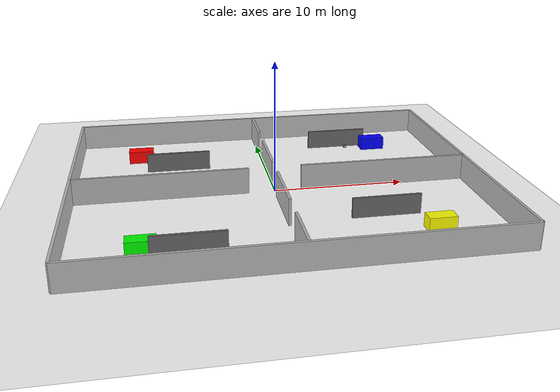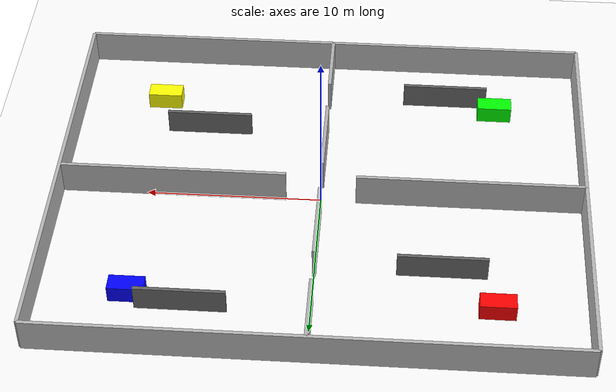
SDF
<?xml version="1.0" ?>
<sdf version="1.7">
  <world name="warehouse_world">

<!-- Plugins needed for the simulation                     -->
<!-- Gazebo uses system plugins to enable core features   -->

<!-- Physics engine: enables dynamics simulation
     (gravity, collisions, wheel motion, forces) -->
<plugin filename="gz-sim-physics-system"
        name="gz::sim::systems::Physics"/>

<!-- User commands: allows external commands such as
     spawning or deleting entities from ROS or CLI -->
<plugin filename="gz-sim-user-commands-system"
        name="gz::sim::systems::UserCommands"/>

<!-- Scene broadcaster: sends simulation updates to
     the GUI so objects move correctly in the viewer -->
<plugin filename="gz-sim-scene-broadcaster-system"
        name="gz::sim::systems::SceneBroadcaster"/>

<!-- Sensors system: enables simulated sensors such as
     LiDAR, cameras, IMU, etc. Without this plugin
     sensors exist but do not produce data -->
<plugin filename="gz-sim-sensors-system"
        name="gz::sim::systems::Sensors">

  <!-- Match the render path used by tugbot_warehouse, which publishes depth images here. -->
  <render_engine>ogre2</render_engine>

</plugin>

    <!-- Sun -->
    <include>
      <uri>https://fuel.gazebosim.org/1.0/OpenRobotics/models/Sun</uri>
    </include>

<!-- White floor -->
<model name="white_floor">
  <static>true</static>
  <pose>0 0 0 0 0 0</pose>

  <link name="floor_link">

    <collision name="collision">
      <geometry>
        <plane>
          <normal>0 0 1</normal>
          <size>40 40</size>
        </plane>
      </geometry>
    </collision>

    <visual name="visual">
      <geometry>
        <plane>
          <normal>0 0 1</normal>
          <size>40 40</size>
        </plane>
      </geometry>

      <material>
        <ambient>1 1 1 1</ambient>
        <diffuse>1 1 1 1</diffuse>
        <specular>0.1 0.1 0.1 1</specular>
      </material>

    </visual>

  </link>
</model>
    <!-- OUTER WALLS -->

    <model name="wall_north">
      <static>true</static>
      <pose>0 12 1 0 0 0</pose>
      <link name="link">
        <collision name="collision">
          <geometry><box><size>30 0.2 2</size></box></geometry>
        </collision>
        <visual name="visual">
          <geometry><box><size>30 0.2 2</size></box></geometry>
        </visual>
      </link>
    </model>

    <model name="wall_south">
      <static>true</static>
      <pose>0 -12 1 0 0 0</pose>
      <link name="link">
        <collision name="collision">
          <geometry><box><size>30 0.2 2</size></box></geometry>
        </collision>
        <visual name="visual">
          <geometry><box><size>30 0.2 2</size></box></geometry>
        </visual>
      </link>
    </model>

    <model name="wall_east">
      <static>true</static>
      <pose>15 0 1 0 0 0</pose>
      <link name="link">
        <collision name="collision">
          <geometry><box><size>0.2 24 2</size></box></geometry>
        </collision>
        <visual name="visual">
          <geometry><box><size>0.2 24 2</size></box></geometry>
        </visual>
      </link>
    </model>

    <model name="wall_west">
      <static>true</static>
      <pose>-15 0 1 0 0 0</pose>
      <link name="link">
        <collision name="collision">
          <geometry><box><size>0.2 24 2</size></box></geometry>
        </collision>
        <visual name="visual">
          <geometry><box><size>0.2 24 2</size></box></geometry>
        </visual>
      </link>
    </model>

    <!-- INTERNAL WALLS -->

    <!-- Horizontal wall across the middle with one central opening -->
    <model name="mid_wall_left">
      <static>true</static>
      <pose>-8.5 0 1 0 0 0</pose>
      <link name="link">
        <collision name="collision">
          <geometry><box><size>13 0.2 2</size></box></geometry>
        </collision>
        <visual name="visual">
          <geometry><box><size>13 0.2 2</size></box></geometry>
          <material>
            <ambient>0.7 0.7 0.7 1</ambient>
            <diffuse>0.7 0.7 0.7 1</diffuse>
          </material>
        </visual>
      </link>
    </model>

    <model name="mid_wall_right">
      <static>true</static>
      <pose>8.5 0 1 0 0 0</pose>
      <link name="link">
        <collision name="collision">
          <geometry><box><size>13 0.2 2</size></box></geometry>
        </collision>
        <visual name="visual">
          <geometry><box><size>13 0.2 2</size></box></geometry>
          <material>
            <ambient>0.7 0.7 0.7 1</ambient>
            <diffuse>0.7 0.7 0.7 1</diffuse>
          </material>
        </visual>
      </link>
    </model>

    <!-- Vertical wall across the middle with offset openings -->
    <!-- top segment -->
    <model name="mid_vertical_top">
      <static>true</static>
      <pose>0 10 1 0 0 0</pose>
      <link name="link">
        <collision name="collision">
          <geometry><box><size>0.2 4 2</size></box></geometry>
        </collision>
        <visual name="visual">
          <geometry><box><size>0.2 4 2</size></box></geometry>
          <material>
            <ambient>0.7 0.7 0.7 1</ambient>
            <diffuse>0.7 0.7 0.7 1</diffuse>
          </material>
        </visual>
      </link>
    </model>

    <!-- upper-middle segment -->
    <model name="mid_vertical_upper">
      <static>true</static>
      <pose>0 3.5 1 0 0 0</pose>
      <link name="link">
        <collision name="collision">
          <geometry><box><size>0.2 5 2</size></box></geometry>
        </collision>
        <visual name="visual">
          <geometry><box><size>0.2 5 2</size></box></geometry>
          <material>
            <ambient>0.7 0.7 0.7 1</ambient>
            <diffuse>0.7 0.7 0.7 1</diffuse>
          </material>
        </visual>
      </link>
    </model>

    <!-- lower-middle segment -->
    <model name="mid_vertical_lower">
      <static>true</static>
      <pose>0 -3.5 1 0 0 0</pose>
      <link name="link">
        <collision name="collision">
          <geometry><box><size>0.2 5 2</size></box></geometry>
        </collision>
        <visual name="visual">
          <geometry><box><size>0.2 5 2</size></box></geometry>
          <material>
            <ambient>0.7 0.7 0.7 1</ambient>
            <diffuse>0.7 0.7 0.7 1</diffuse>
          </material>
        </visual>
      </link>
    </model>

    <!-- bottom segment -->
    <model name="mid_vertical_bottom">
      <static>true</static>
      <pose>0 -10 1 0 0 0</pose>
      <link name="link">
        <collision name="collision">
          <geometry><box><size>0.2 4 2</size></box></geometry>
        </collision>
        <visual name="visual">
          <geometry><box><size>0.2 4 2</size></box></geometry>
          <material>
            <ambient>0.7 0.7 0.7 1</ambient>
            <diffuse>0.7 0.7 0.7 1</diffuse>
          </material>
        </visual>
      </link>
    </model>

    <!-- LOCAL BLOCKERS / AISLE OBSTACLES -->

    <!-- Top-left quadrant blocker -->
    <model name="blocker_tl">
      <static>true</static>
      <pose>-7 5.5 0.75 0 0 0</pose>
      <link name="link">
        <collision name="collision">
          <geometry><box><size>5 0.2 1.5</size></box></geometry>
        </collision>
        <visual name="visual">
          <geometry><box><size>5 0.2 1.5</size></box></geometry>
          <material>
            <ambient>0.4 0.4 0.4 1</ambient>
            <diffuse>0.4 0.4 0.4 1</diffuse>
          </material>
        </visual>
      </link>
    </model>

    <!-- Top-right quadrant blocker -->
    <model name="blocker_tr">
      <static>true</static>
      <pose>7 8.8 0.75 0 0 0</pose>
      <link name="link">
        <collision name="collision">
          <geometry><box><size>5 0.2 1.5</size></box></geometry>
        </collision>
        <visual name="visual">
          <geometry><box><size>5 0.2 1.5</size></box></geometry>
          <material>
            <ambient>0.4 0.4 0.4 1</ambient>
            <diffuse>0.4 0.4 0.4 1</diffuse>
          </material>
        </visual>
      </link>
    </model>

    <!-- Bottom-left quadrant blocker -->
    <model name="blocker_bl">
      <static>true</static>
      <pose>-7 -8.8 0.75 0 0 0</pose>
      <link name="link">
        <collision name="collision">
          <geometry><box><size>5 0.2 1.5</size></box></geometry>
        </collision>
        <visual name="visual">
          <geometry><box><size>5 0.2 1.5</size></box></geometry>
          <material>
            <ambient>0.4 0.4 0.4 1</ambient>
            <diffuse>0.4 0.4 0.4 1</diffuse>
          </material>
        </visual>
      </link>
    </model>

    <!-- Bottom-right quadrant blocker -->
    <model name="blocker_br">
      <static>true</static>
      <pose>7 -5.5 0.75 0 0 0</pose>
      <link name="link">
        <collision name="collision">
          <geometry><box><size>5 0.2 1.5</size></box></geometry>
        </collision>
        <visual name="visual">
          <geometry><box><size>5 0.2 1.5</size></box></geometry>
          <material>
            <ambient>0.4 0.4 0.4 1</ambient>
            <diffuse>0.4 0.4 0.4 1</diffuse>
          </material>
        </visual>
      </link>
    </model>

    <!-- SHELVES / COLORED BOXES -->

    <model name="shelf_red">
      <static>true</static>
      <pose>-10 8 0.5 0 0 0</pose>
      <link name="link">
        <collision name="collision">
          <geometry><box><size>2 1 1</size></box></geometry>
        </collision>
        <visual name="visual">
          <geometry><box><size>2 1 1</size></box></geometry>
          <material>
            <ambient>1 0 0 1</ambient>
            <diffuse>1 0 0 1</diffuse>
          </material>
        </visual>
      </link>
    </model>

    <model name="shelf_blue">
      <static>true</static>
      <pose>10 8 0.5 0 0 0</pose>
      <link name="link">
        <collision name="collision">
          <geometry><box><size>2 1 1</size></box></geometry>
        </collision>
        <visual name="visual">
          <geometry><box><size>2 1 1</size></box></geometry>
          <material>
            <ambient>0 0 1 1</ambient>
            <diffuse>0 0 1 1</diffuse>
          </material>
        </visual>
      </link>
    </model>

    <model name="shelf_green">
      <static>true</static>
      <pose>-10 -8 0.5 0 0 0</pose>
      <link name="link">
        <collision name="collision">
          <geometry><box><size>2 1 1</size></box></geometry>
        </collision>
        <visual name="visual">
          <geometry><box><size>2 1 1</size></box></geometry>
          <material>
            <ambient>0 1 0 1</ambient>
            <diffuse>0 1 0 1</diffuse>
          </material>
        </visual>
      </link>
    </model>

    <model name="shelf_yellow">
      <static>true</static>
      <pose>10 -8 0.5 0 0 0</pose>
      <link name="link">
        <collision name="collision">
          <geometry><box><size>2 1 1</size></box></geometry>
        </collision>
        <visual name="visual">
          <geometry><box><size>2 1 1</size></box></geometry>
          <material>
            <ambient>1 1 0 1</ambient>
            <diffuse>1 1 0 1</diffuse>
          </material>
        </visual>
      </link>
    </model>

    <!-- Red object for RGB-D detection and arm picking demo -->
    <model name="red_pick_box">
      <static>false</static>
      <pose>7.75 8.3 0.265 0 0 0</pose>

      <link name="link">
        <inertial>
          <mass>0.02</mass>
          <inertia>
            <ixx>0.00005</ixx>
            <iyy>0.00005</iyy>
            <izz>0.00005</izz>
            <ixy>0</ixy>
            <ixz>0</ixz>
            <iyz>0</iyz>
          </inertia>
        </inertial>

        <collision name="collision">
          <geometry>
            <box>
              <size>0.05 0.05 0.05</size>
            </box>
          </geometry>
          <surface>
            <friction>
              <ode>
                <mu>2.0</mu>
                <mu2>2.0</mu2>
              </ode>
            </friction>
          </surface>
        </collision>

        <visual name="visual">
          <geometry>
            <box>
              <size>0.05 0.05 0.05</size>
            </box>
          </geometry>
          <material>
            <ambient>1 0 0 1</ambient>
            <diffuse>1 0 0 1</diffuse>
            <specular>0.2 0.0 0.0 1</specular>
          </material>
        </visual>
      </link>
    </model>

    <model name="pick_table">
      <static>true</static>
      <pose>7.75 8.4 0.12 0 0 0</pose>

      <link name="link">
        <collision name="collision">
          <geometry>
            <box>
              <size>0.25 0.25 0.24</size>
            </box>
          </geometry>
        </collision>

        <visual name="visual">
          <geometry>
            <box>
              <size>0.25 0.25 0.24</size>
            </box>
          </geometry>
          <material>
            <ambient>0.5 0.5 0.5 1</ambient>
            <diffuse>0.5 0.5 0.5 1</diffuse>
          </material>
        </visual>
      </link>
    </model>

  </world>
</sdf>
